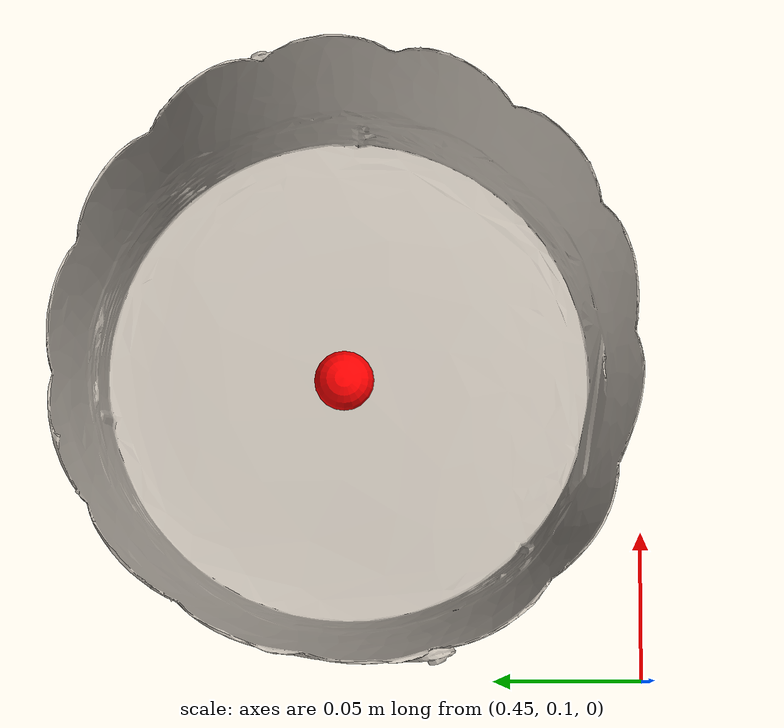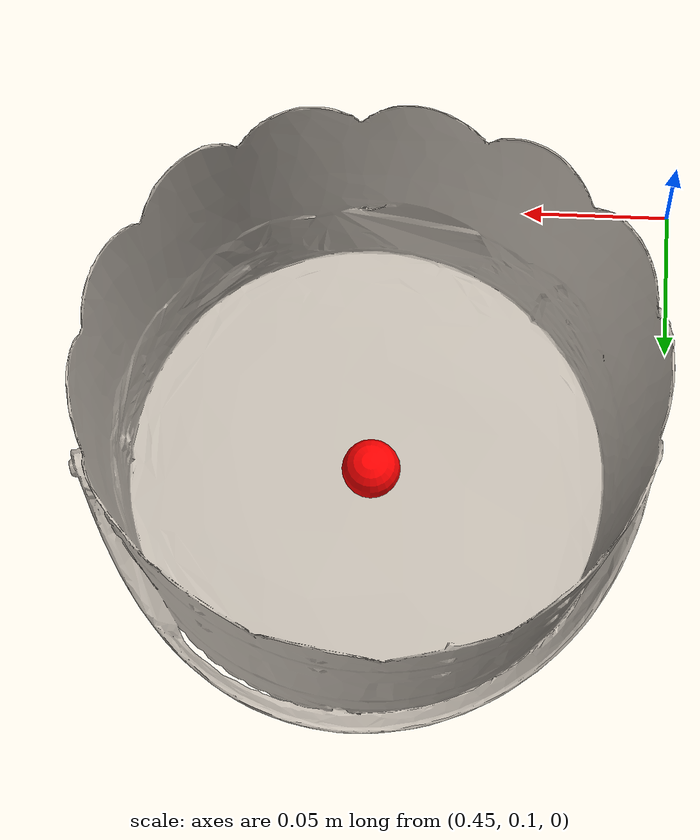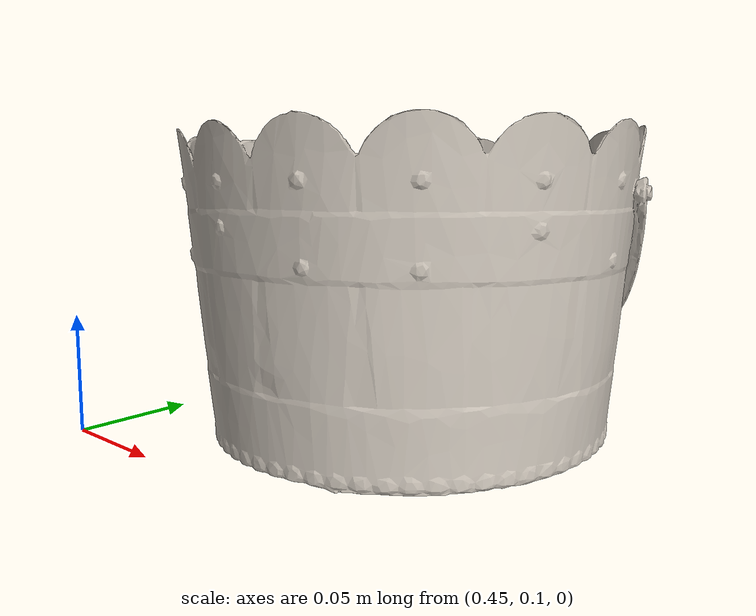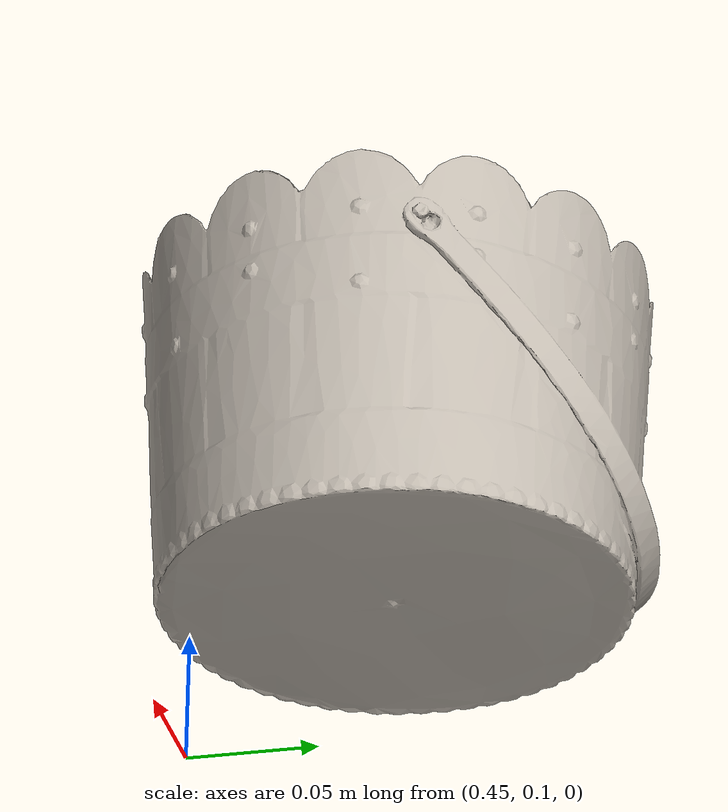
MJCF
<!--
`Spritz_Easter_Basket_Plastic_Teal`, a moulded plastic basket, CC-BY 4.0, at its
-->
<?xml version="1.0"?>
<mujoco model="container">
  <compiler angle="radian" meshdir="assets" texturedir="assets"/>
  <asset>
    <texture name="container_tex" type="2d" file="container_tex.png"/>
    <material name="container_mat" texture="container_tex" specular="0.15" shininess="0.15"/>
    <mesh name="container_vis" file="container_vis.obj"/>
  </asset>
  <worldbody>
    <body name="container_base" pos="0.55 0.2 0.0" mocap="true">
      <inertial pos="0.00002 0.00094 0.06669" quat="0.994850 -0.018346 -0.006600 0.099463"
                mass="0.25000" diaginertia="8.282e-04 8.527e-04 1.023e-03"/>
      <geom name="container_visual" type="mesh" mesh="container_vis" material="container_mat"
            contype="0" conaffinity="0" group="2" mass="0"/>
      <!-- Floor of the bin: 4 mm moulded base, top surface at z = 0.004. -->
      <geom type="box" name="container_floor" size="0.0835 0.0835 0.002" pos="0 0 0.002"
            group="3" condim="3" friction="1 0.03 0.003" rgba="0.35 0.35 0.7 0.3"
            contype="1" conaffinity="1" solref="0.01 1" mass="0"/>
      <!-- Four walls: inner faces at +-0.0815, rim at z = 0.117. -->
      <geom type="box" name="container_wall_px" size="0.002 0.0835 0.0565" pos="0.0835 0 0.0605"
            group="3" condim="3" friction="1 0.03 0.003" rgba="0.35 0.35 0.7 0.3"
            contype="1" conaffinity="1" solref="0.01 1" mass="0"/>
      <geom type="box" name="container_wall_nx" size="0.002 0.0835 0.0565" pos="-0.0835 0 0.0605"
            group="3" condim="3" friction="1 0.03 0.003" rgba="0.35 0.35 0.7 0.3"
            contype="1" conaffinity="1" solref="0.01 1" mass="0"/>
      <geom type="box" name="container_wall_py" size="0.0835 0.002 0.0565" pos="0 0.0835 0.0605"
            group="3" condim="3" friction="1 0.03 0.003" rgba="0.35 0.35 0.7 0.3"
            contype="1" conaffinity="1" solref="0.01 1" mass="0"/>
      <geom type="box" name="container_wall_ny" size="0.0835 0.002 0.0565" pos="0 -0.0835 0.0605"
            group="3" condim="3" friction="1 0.03 0.003" rgba="0.35 0.35 0.7 0.3"
            contype="1" conaffinity="1" solref="0.01 1" mass="0"/>
      <site name="object_site" pos="0 0 0.02" size="0.01" rgba="1 0 0 1"/>
      <site name="base_site" pos="0 0 0.02" size="0.01" rgba="0 0 1 0.3"/>
    </body>
  </worldbody>
</mujoco>
